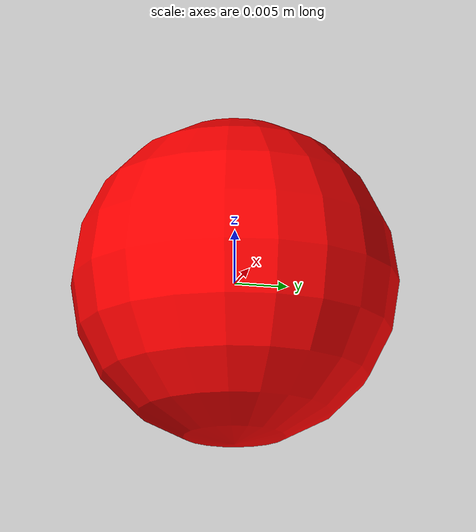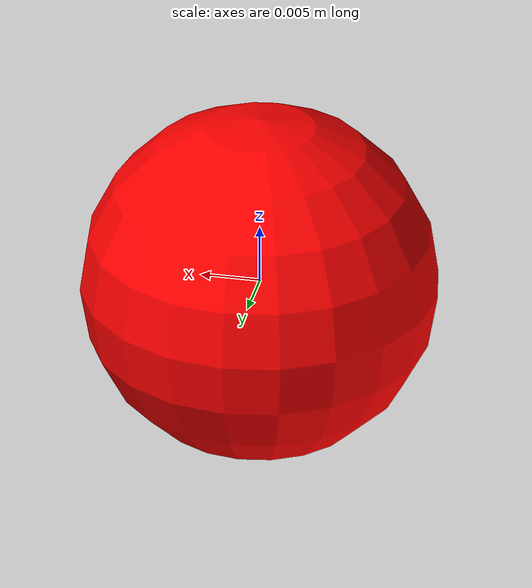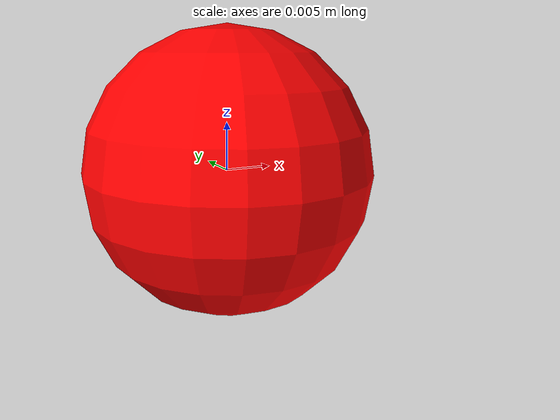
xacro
<?xml version="1.0"?>
<!--URDF MODEL 2 point robots-->
<robot xmlns:xacro="http://ros.org/wiki/xacro" name="point2robots" >

<material name="black">
  <color rgba="1 1 1 0.9"/>
</material>
<material name="red">
  <color rgba="1 0 0 0.9"/>
</material>
<material name="green">
  <color rgba="0 1 0 0.9"/>
</material>
<material name="blue">
  <color rgba="0 0 1 0.9"/>
</material>

<xacro:property name="radius" value="0.015" />
<xacro:property name="origin_frame" value="world" />

<xacro:include filename="$(find planar_cartesian_robot_description)/urdf/point_robot.xacro" />
<link name="${origin_frame}" />

<xacro:point_robot prefix="r_" joint_limited="true" origin_frame="${origin_frame}" sphere_radius="${radius}" color="red"/>
<xacro:point_robot prefix="g_" joint_limited="true" origin_frame="${origin_frame}" sphere_radius="${radius}" color="green"/>
<xacro:point_robot prefix="b_" joint_limited="true" origin_frame="${origin_frame}" sphere_radius="${radius}" color="blue"/>
<xacro:point_robot prefix="k_" joint_limited="true" origin_frame="${origin_frame}" sphere_radius="${radius}" color="black"/>

</robot>

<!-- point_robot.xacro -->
<!--URDF MODEL point robot-->
<robot xmlns:xacro="http://wiki.ros.org/xacro">
  <xacro:macro name="point_robot"
  params="joint_limited prefix origin_frame color sphere_radius:=${0.015} ">

  <joint name="${prefix}world2cartesian" type="fixed">
    <parent link="${origin_frame}"/>
    <child link="${prefix}link_Z"/>
    <origin xyz="0 0 0" />
  </joint>

  <link name="${prefix}link_Z"/>
  <joint name="${prefix}from_Z_to_X" type="fixed">
    <parent link="${prefix}link_Z"/>
    <child link="${prefix}link_X"/>
    <xacro:unless value="${joint_limited}">
    <limit effort="1000.0" velocity="0.5" lower="-9999999.9"  upper="9999999.9" />
    </xacro:unless>
    <xacro:if value="${joint_limited}">
    <limit effort="1000.0" velocity="0.5" lower="0" upper="1.0"/>
    </xacro:if>
    <axis xyz = "0 0 1" />
    <origin rpy="0 0 0" xyz="0.5 0 0.0"/>
  </joint>

  <link name="${prefix}link_X"/>
  <joint name="${prefix}from_X_to_fake" type="prismatic">
    <parent link="${prefix}link_X"/>
    <child link="${prefix}link_fake"/>
    <xacro:unless value="${joint_limited}">
    <limit effort="1000.0" velocity="0.5" lower="-9999999.9"  upper="9999999.9" />
    </xacro:unless>
    <xacro:if value="${joint_limited}">
    <limit effort="1000.0" velocity="0.5" lower="0" upper="1.0"/>
    </xacro:if>
    <axis xyz = "1 0 0" />
    <origin rpy="0 0 0" xyz="-0.5 0 0"/>
    <limit effort="1000.0" lower="0" upper="1" velocity="0.5"/>
  </joint>

  <link name="${prefix}link_fake"/>
  <joint name="${prefix}from_fake_to_Y" type="prismatic">
    <parent link="${prefix}link_fake"/>
    <child link="${prefix}link_Y"/>
    <xacro:unless value="${joint_limited}">
    <limit effort="1000.0" velocity="0.5" lower="-9999999.9"  upper="9999999.9" />
    </xacro:unless>
    <xacro:if value="${joint_limited}">
    <limit effort="1000.0" velocity="0.5" lower="0" upper="1.0"/>
    </xacro:if>
    <axis xyz = "0 1 0" />
    <origin rpy="0 0 0" xyz="0 -0.5 0"/>
    <limit effort="1000.0" lower="0" upper="1" velocity="0.5"/>
  </joint>

  <link name="${prefix}link_Y"/>
  <joint name="${prefix}from_Y_to_end" type="fixed">
    <parent link="${prefix}link_Y"/>
    <child link="${prefix}end_effector"/>
    <origin rpy="0 0 0" xyz="0 0.5 0"/>
  </joint>

  <link name="${prefix}end_effector">
    <visual>
      <geometry>
        <sphere radius="${sphere_radius}"/>
      </geometry>
      <origin rpy="0 0 0" xyz="0 0 0"/>
      <material name="${color}"/>
    </visual>
    <collision>
      <origin rpy="0 0 0" xyz="0 0 0"/>
      <geometry>
        <sphere radius="${sphere_radius}"/>
      </geometry>
    </collision>
  </link>
  </xacro:macro>

</robot>
